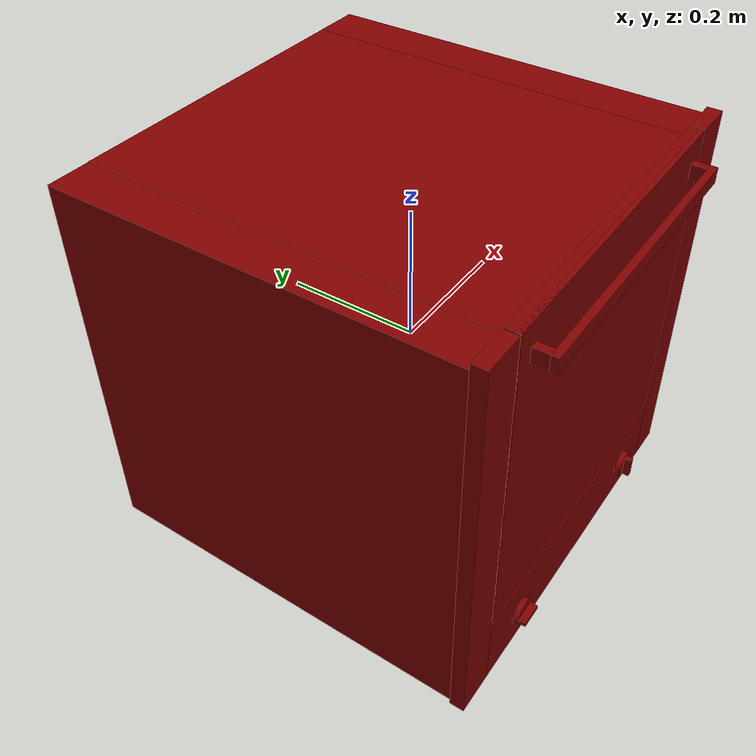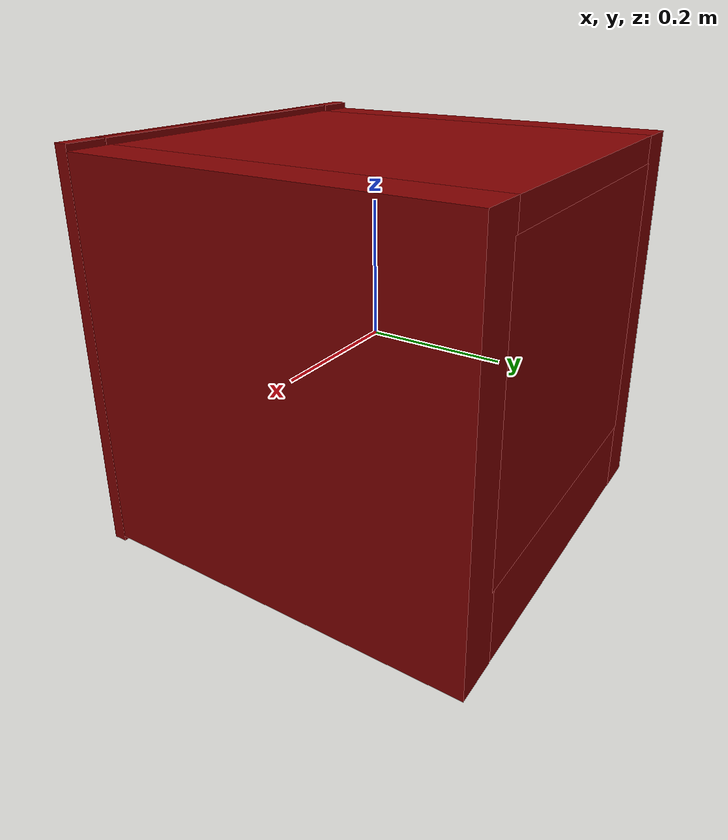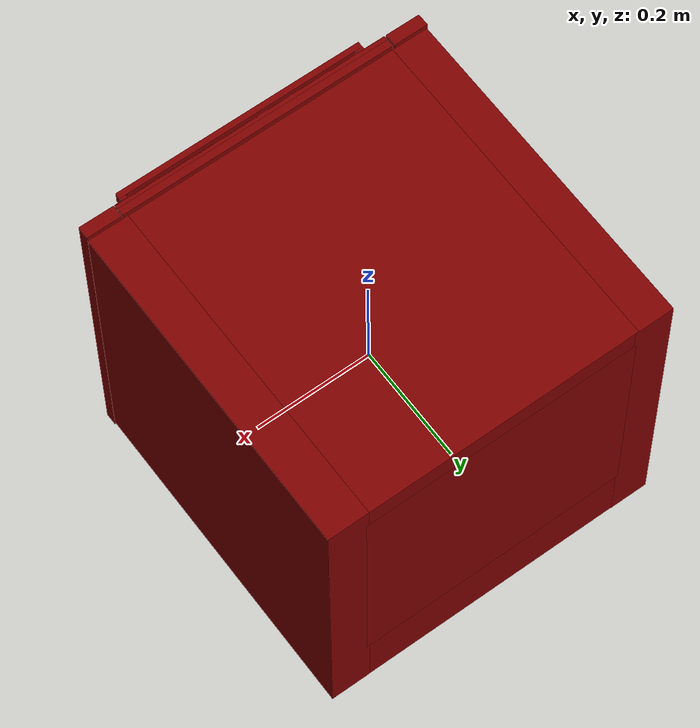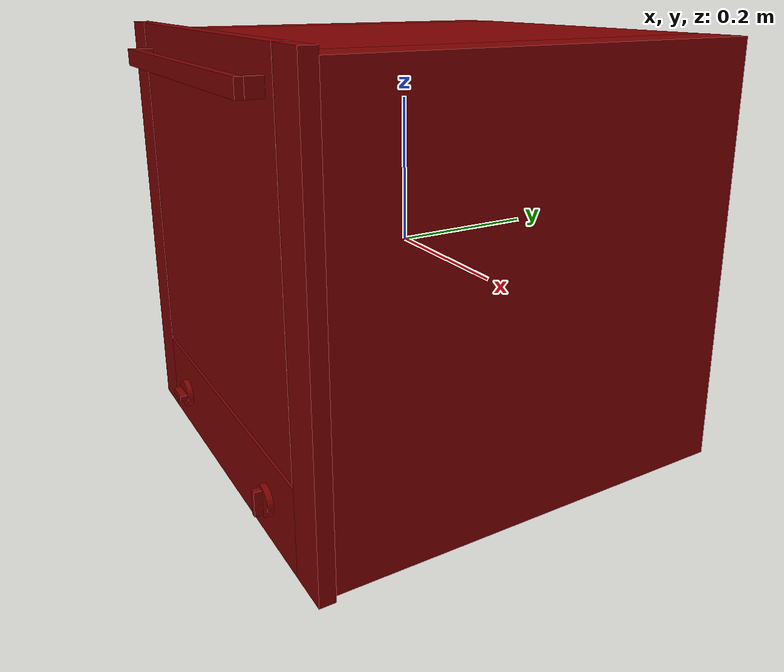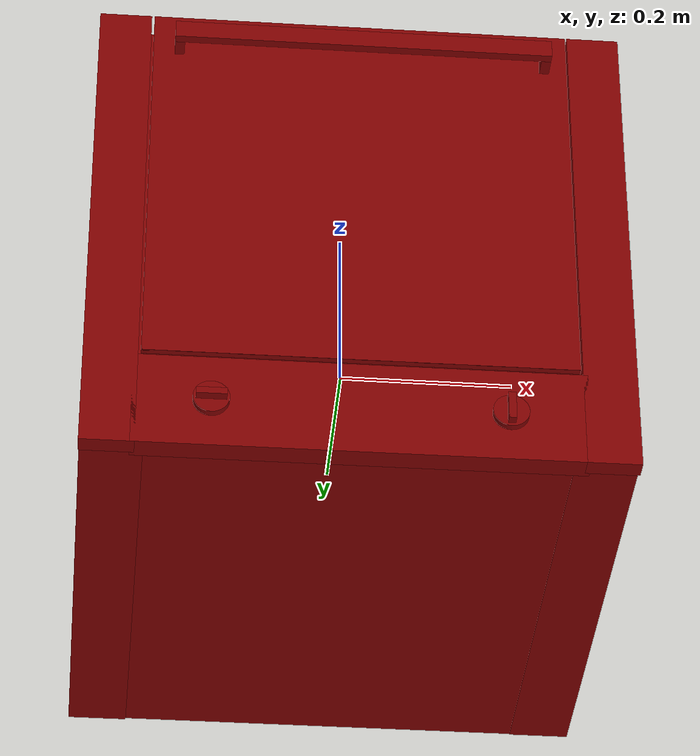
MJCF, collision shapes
<?xml version='1.0' encoding='UTF-8'?>
<mujoco model="model">
  <option timestep="0.002" gravity="0.0 0.0 -9.81"/>
  <compiler angle="radian"/>
  <asset>
    <mesh file="visuals/door.obj" name="door_vis"/>
    <mesh file="visuals/door_Clear.obj" name="door_Clear_vis"/>
    <mesh file="visuals/knob_temp.obj" name="knob_temp_vis"/>
    <mesh file="visuals/knob_time.obj" name="knob_time_vis"/>
    <mesh file="visuals/Body001.obj" name="Body001_vis"/>
    <mesh file="visuals/rack0.obj" name="rack0_vis"/>
    <mesh file="visuals/rack1.obj" name="rack1_vis"/>
    <texture file="visuals/T_BC001.png" name="Body001_material" type="2d"/>
    <material name="Body001_material" rgba="1 1 1 1.0" texture="Body001_material" shininess="0.4472135901451111" specular="0.5"/>
    <texture file="visuals/T_BC001.png" name="door_material" type="2d"/>
    <material name="door_material" rgba="1 1 1 1.0" texture="door_material" shininess="0.4472135901451111" specular="0.5"/>
    <material name="door_Clear_material" rgba="0.06299802660942078 0.06299802660942078 0.06299802660942078 0.800000011920929" shininess="0.4472135901451111" specular="0.3103448502657381"/>
    <texture file="visuals/T_BC001.png" name="knob_temp_material" type="2d"/>
    <material name="knob_temp_material" rgba="1 1 1 1.0" texture="knob_temp_material" shininess="0.4472135901451111" specular="0.3103448502657381"/>
    <texture file="visuals/T_BC001.png" name="knob_time_material" type="2d"/>
    <material name="knob_time_material" rgba="1 1 1 1.0" texture="knob_time_material" shininess="0.4472135901451111" specular="0.3103448502657381"/>
    <texture file="visuals/T_BC001.png" name="rack0_material" type="2d"/>
    <material name="rack0_material" rgba="1 1 1 1.0" texture="rack0_material" shininess="0.4472135901451111" specular="5"/>
    <texture file="visuals/T_BC001.png" name="rack1_material" type="2d"/>
    <material name="rack1_material" rgba="1 1 1 1.0" texture="rack1_material" shininess="0.4472135901451111" specular="5"/>
  </asset>
  <default>
    <default class="visual">
      <geom conaffinity="0" contype="0" group="1" type="mesh"/>
    </default>
    <default class="collision">
      <geom group="0" rgba="0.5 0 0 0.5"/>
    </default>
    <default class="spawn">
      <geom group="0" rgba="1 1 1 0.5" contype="0" conaffinity="0"/>
      <site group="0" rgba="1 1 1 0.5"/>
    </default>
    <default class="region">
      <geom group="1" conaffinity="0" contype="0" rgba="0 1 0 0"/>
    </default>
  </default>
  <worldbody>
    <body>
      <body name="object">
        <geom mesh="Body001_vis" type="mesh" solimp="0.998 0.998 0.001" solref="0.001 1" friction="0.95 0.3 0.1" class="visual" material="Body001_material"/>
        <geom class="collision" type="box" pos="-0.2630101442337036 0.02541886642575264 -0.001234508352354169" size="0.033552136272192 0.2859603762626648 0.2864573895931244" quat="1.0 0.0 0.0 0.0"/>
        <geom class="collision" type="box" pos="0.2626335620880127 0.02541886642575264 -0.00052410684293136" size="0.03434321656823158 0.2859603762626648 0.28642332553863525" quat="1.0 0.0 0.0 0.0"/>
        <geom class="collision" type="box" pos="-0.00023108544701244682 0.025858717039227486 0.2509821951389313" size="0.23473875224590302 0.2855015695095062 0.034805797040462494" quat="1.0 0.0 0.0 0.0"/>
        <geom class="collision" type="box" pos="-0.00023109244648367167 0.025935286656022072 -0.20306845009326935" size="0.23473893105983734 0.2854253053665161 0.08306281268596649" quat="1.0 0.0 0.0 0.0"/>
        <geom class="collision" type="box" pos="-0.0002310810232302174 0.26080644130706787 0.034602127969264984" size="0.23323078453540802 0.050572797656059265 0.2120906114578247" quat="1.0 0.0 0.0 0.0"/>
        <geom class="collision" type="box" pos="-0.2681024670600891 -0.2702047824859619 0.0" size="0.029395855963230133 0.010416253469884396 0.2950001060962677" quat="1.0 0.0 0.0 0.0"/>
        <geom class="collision" type="box" pos="0.2679767906665802 -0.2702047824859619 0.0" size="0.029521722346544266 0.010416260920464993 0.2950001060962677" quat="1.0 0.0 0.0 0.0"/>
        <geom class="collision" type="box" pos="-0.00023013663303572685 -0.2675216794013977 -0.23857353627681732" size="0.24376006424427032 0.013099294155836105 0.05642365664243698" quat="1.0 0.0 0.0 0.0"/>
        <geom class="collision" type="box" pos="-0.22725310921669006 -0.04732924699783325 0.05906589701771736" size="0.002708730986341834 0.15564122796058655 0.15343330800533295" quat="1.0 0.0 0.0 0.0"/>
        <geom class="collision" type="box" pos="-0.22124876081943512 -0.04732922464609146 -0.06022227555513382" size="0.004680379759520292 0.14901202917099 0.003728215117007494" quat="1.0 0.0 0.0 0.0"/>
        <geom class="collision" type="box" pos="-0.22124876081943512 -0.04732922464609146 -0.07607133686542511" size="0.0046803830191493034 0.1490122377872467 0.0037282216362655163" quat="1.0 0.0 0.0 0.0"/>
        <geom class="collision" type="box" pos="-0.22124876081943512 -0.04732922464609146 -0.022536739706993103" size="0.004680386278778315 0.14901243150234222 0.0037282246630638838" quat="1.0 0.0 0.0 0.0"/>
        <geom class="collision" type="box" pos="-0.22124876081943512 -0.04732922464609146 -0.04402101784944534" size="0.0046803890727460384 0.14901262521743774 0.003728227922692895" quat="1.0 0.0 0.0 0.0"/>
        <geom class="collision" type="box" pos="-0.22124876081943512 -0.04732922464609146 -0.006100676953792572" size="0.00468039233237505 0.14901281893253326 0.00372823397628963" quat="1.0 0.0 0.0 0.0"/>
        <geom class="collision" type="box" pos="-0.22124876081943512 -0.04732922464609146 0.012800794094800949" size="0.0046803951263427734 0.14901302754878998 0.0037282384000718594" quat="1.0 0.0 0.0 0.0"/>
        <geom class="collision" type="box" pos="-0.22124876081943512 -0.04732922464609146 0.02864985167980194" size="0.004680398385971785 0.1490132212638855 0.0037282449193298817" quat="1.0 0.0 0.0 0.0"/>
        <geom class="collision" type="box" pos="-0.22124876081943512 -0.04732922464609146 0.04661212116479874" size="0.004680401645600796 0.14901341497898102 0.0037282470148056746" quat="1.0 0.0 0.0 0.0"/>
        <geom class="collision" type="box" pos="-0.22124876081943512 -0.04732922464609146 0.06222638115286827" size="0.00468040443956852 0.14901362359523773 0.003728255396708846" quat="1.0 0.0 0.0 0.0"/>
        <geom class="collision" type="box" pos="-0.22124876081943512 -0.04732922464609146 0.08136264979839325" size="0.004680407699197531 0.14901381731033325 0.003728260053321719" quat="1.0 0.0 0.0 0.0"/>
        <geom class="collision" type="box" pos="-0.22124876081943512 -0.04732922464609146 0.09732910990715027" size="0.004680410493165255 0.14901401102542877 0.003728264942765236" quat="1.0 0.0 0.0 0.0"/>
        <geom class="collision" type="box" pos="-0.22124876081943512 -0.04732922464609146 0.1145869717001915" size="0.004680413752794266 0.1490142047405243 0.003728269599378109" quat="1.0 0.0 0.0 0.0"/>
        <geom class="collision" type="box" pos="-0.22124876081943512 -0.04732922464609146 0.13149262964725494" size="0.00468041654676199 0.149014413356781 0.0037282744888216257" quat="1.0 0.0 0.0 0.0"/>
        <geom class="collision" type="box" pos="-0.22124876081943512 -0.04732922464609146 0.14698947966098785" size="0.004680419806391001 0.14901460707187653 0.0037282793782651424" quat="1.0 0.0 0.0 0.0"/>
        <geom class="collision" type="box" pos="-0.22124876081943512 -0.04732922464609146 0.1634255349636078" size="0.004680423066020012 0.14901480078697205 0.0037282840348780155" quat="1.0 0.0 0.0 0.0"/>
        <geom class="collision" type="box" pos="-0.22124876081943512 -0.04732922464609146 0.18209220468997955" size="0.004680425859987736 0.14901500940322876 0.0037282889243215322" quat="1.0 0.0 0.0 0.0"/>
        <geom class="collision" type="box" pos="-0.22124876081943512 -0.04732922464609146 0.1981760710477829" size="0.004680429119616747 0.14901520311832428 0.003728293813765049" quat="1.0 0.0 0.0 0.0"/>
        <geom class="collision" type="box" pos="0.23021499812602997 -0.04732923209667206 0.05906589701771736" size="0.002708774758502841 0.15564493834972382 0.15343685448169708" quat="1.0 0.0 0.0 0.0"/>
        <geom class="collision" type="box" pos="0.22421063482761383 -0.04732923209667206 -0.06022227555513382" size="0.004680401645600796 0.14901559054851532 0.0037283014971762896" quat="1.0 0.0 0.0 0.0"/>
        <geom class="collision" type="box" pos="0.22421063482761383 -0.04732923209667206 -0.07607133686542511" size="0.00468040443956852 0.14901578426361084 0.003728308016434312" quat="1.0 0.0 0.0 0.0"/>
        <geom class="collision" type="box" pos="0.22421063482761383 -0.04732923209667206 -0.022536739706993103" size="0.004680407699197531 0.14901597797870636 0.003728311276063323" quat="1.0 0.0 0.0 0.0"/>
        <geom class="collision" type="box" pos="0.22421063482761383 -0.04732923209667206 -0.04402101784944534" size="0.004680410493165255 0.14901618659496307 0.0037283143028616905" quat="1.0 0.0 0.0 0.0"/>
        <geom class="collision" type="box" pos="0.22421063482761383 -0.04732923209667206 -0.006100676953792572" size="0.004680413752794266 0.1490163803100586 0.0037283203564584255" quat="1.0 0.0 0.0 0.0"/>
        <geom class="collision" type="box" pos="0.22421063482761383 -0.04732923209667206 0.012800794094800949" size="0.00468041654676199 0.1490165740251541 0.003728324780240655" quat="1.0 0.0 0.0 0.0"/>
        <geom class="collision" type="box" pos="0.22421063482761383 -0.04732923209667206 0.02864985167980194" size="0.004680419806391001 0.14901678264141083 0.0037283312994986773" quat="1.0 0.0 0.0 0.0"/>
        <geom class="collision" type="box" pos="0.22421063482761383 -0.04732923209667206 0.04661212116479874" size="0.004680423066020012 0.14901697635650635 0.00372833339497447" quat="1.0 0.0 0.0 0.0"/>
        <geom class="collision" type="box" pos="0.22421063482761383 -0.04732923209667206 0.06222638115286827" size="0.004680425859987736 0.14901717007160187 0.0037283417768776417" quat="1.0 0.0 0.0 0.0"/>
        <geom class="collision" type="box" pos="0.22421063482761383 -0.04732923209667206 0.08136264979839325" size="0.004680429119616747 0.1490173637866974 0.0037283464334905148" quat="1.0 0.0 0.0 0.0"/>
        <geom class="collision" type="box" pos="0.22421063482761383 -0.04732923209667206 0.09732910990715027" size="0.004680431913584471 0.1490175724029541 0.0037283513229340315" quat="1.0 0.0 0.0 0.0"/>
        <geom class="collision" type="box" pos="0.22421063482761383 -0.04732923209667206 0.1145869717001915" size="0.004680435173213482 0.14901776611804962 0.0037283562123775482" quat="1.0 0.0 0.0 0.0"/>
        <geom class="collision" type="box" pos="0.22421063482761383 -0.04732923209667206 0.13149262964725494" size="0.004680438432842493 0.14901795983314514 0.0037283608689904213" quat="1.0 0.0 0.0 0.0"/>
        <geom class="collision" type="box" pos="0.22421063482761383 -0.04732923209667206 0.14698947966098785" size="0.004680441226810217 0.14901816844940186 0.003728365758433938" quat="1.0 0.0 0.0 0.0"/>
        <geom class="collision" type="box" pos="0.22421063482761383 -0.04732923209667206 0.1634255349636078" size="0.004680445417761803 0.14901836216449738 0.0037283706478774548" quat="1.0 0.0 0.0 0.0"/>
        <geom class="collision" type="box" pos="0.22421063482761383 -0.04732923209667206 0.18209220468997955" size="0.004680451471358538 0.1490185558795929 0.003728375304490328" quat="1.0 0.0 0.0 0.0"/>
        <geom class="collision" type="box" pos="0.22421063482761383 -0.04732923209667206 0.1981760710477829" size="0.004680457524955273 0.14901874959468842 0.0037283801939338446" quat="1.0 0.0 0.0 0.0"/>
        <body name="door">
          <joint axis="1.0 0.0 0.0" pos="0.0004098769568372518 -0.2806213730946183 -0.175832848995924" limited="true" name="door_joint" range="0.0 1.15" type="hinge" damping="1" frictionloss="1" armature="1" stiffness="2"/>
          <geom mesh="door_vis" type="mesh" solimp="0.998 0.998 0.001" solref="0.001 1" friction="0.95 0.3 0.1" class="visual" material="door_material"/>
          <geom class="collision" type="box" pos="0.0004098769568372518 -0.2704674303531647 0.05958360806107521" size="0.23592068254947662 0.010153942741453648 0.2354164570569992" quat="1.0 0.0 0.0 0.0"/>
          <geom class="collision" type="box" pos="0.0022231449838727713 -0.27550461888313293 0.06000695377588272" size="0.2033178061246872 0.0023457747884094715 0.13238362967967987" quat="1.0 0.0 0.0 0.0"/>
          <geom class="collision" type="box" pos="-0.20611771941184998 -0.293444961309433 0.2514241933822632" size="0.005453939083963633 0.015249609015882015 0.011146306060254574" quat="1.0 0.0 0.0 0.0"/>
          <geom class="collision" type="box" pos="0.21035268902778625 -0.293444961309433 0.2514241933822632" size="0.005453942343592644 0.015249618329107761 0.011146319098770618" quat="1.0 0.0 0.0 0.0"/>
          <geom class="collision" type="box" pos="0.0021265612449496984 -0.30682143568992615 0.2514241933822632" size="0.21373148262500763 0.005022237543016672 0.011146883480250835" quat="1.0 0.0 0.0 0.0" name="door_handle_main"/>
          <geom class="collision" type="box" pos="0.0004098769568372518 -0.276955246925354 0.05958360806107521" size="0.23592068254947662 0.0036661261692643166 0.2354164570569992" quat="1.0 0.0 0.0 0.0" name="door_main"/>
          <body name="door_Clear">
            <geom mesh="door_Clear_vis" type="mesh" solimp="0.998 0.998 0.001" solref="0.001 1" friction="0.95 0.3 0.1" class="visual" material="door_Clear_material"/>
            <geom class="collision" type="box" pos="0.0022231449838727713 -0.27550461888313293 0.06000695377588272" size="0.2033178061246872 0.0023457747884094715 0.13238362967967987" quat="1.0 0.0 0.0 0.0"/>
          </body>
        </body>
        <body name="knob_temp">
          <joint axis="0.0 1.0 0.0" pos="-0.15987609326839447 -0.29023119807243347 -0.23870030045509338" limited="true" name="knob_temp_joint" range="0.0 3.141592653589793" type="hinge" damping="0.05" frictionloss="0.75" armature="1"/>
          <geom mesh="knob_temp_vis" type="mesh" solimp="0.998 0.998 0.001" solref="0.001 1" friction="0.95 0.3 0.1" class="visual" material="knob_temp_material"/>
          <geom class="collision" type="box" pos="-0.15983720123767853 -0.2947709262371063 -0.23863905668258667" size="0.016494592651724815 0.005381186027079821 0.003911553882062435" quat="1.0 0.0 0.0 0.0" name="knob_temp_main" friction="100 0.5 0.01"/>
          <geom class="collision" type="cylinder" pos="-0.1598464846611023 -0.2855515778064728 -0.23889756202697754" size="0.01970379240810871 0.004038320388644934" quat="0.7071068286895752 0.7071067690849304 -1.5700924318127872e-16 -5.9269340452702814e-24" friction="100 0.5 0.01"/>
        </body>
        <body name="knob_time">
          <joint axis="0.0 1.0 0.0" pos="0.15816548466682434 -0.29023119807243347 -0.23870030045509338" limited="true" name="knob_time_joint" range="0.0 3.961897402027128" type="hinge" damping="0.05" frictionloss="0.75" armature="1"/>
          <geom mesh="knob_time_vis" type="mesh" solimp="0.998 0.998 0.001" solref="0.001 1" friction="0.95 0.3 0.1" class="visual" material="knob_time_material"/>
          <geom class="collision" type="box" pos="0.15828751027584076 -0.2947709262371063 -0.2387455701828003" size="0.004095931071788073 0.00538118788972497 0.016494592651724815" quat="1.0 0.0 0.0 0.0" name="knob_time_main" friction="100 0.5 0.01"/>
          <geom class="collision" type="cylinder" pos="0.15842072665691376 -0.2855515778064728 -0.23889756202697754" size="0.01970379240810871 0.004038320388644934" quat="0.7071068286895752 0.7071067690849304 -1.5700924318127872e-16 -5.9269340452702814e-24" friction="100 0.5 0.01"/>
        </body>
        <body name="rack0">
          <geom class="region" name="reg_rack0" type="box" pos="0.0013898015022277832 -0.042783014476299286 0.016485968604683876" size="0.2092209438085556 0.13290167397260666 0.07838309167325497"/>
          <joint axis="0.0 -1.0 0.0" pos="0.001493387040682137 -0.04426621273159981 -0.06960800290107727" limited="true" name="rack0_joint" range="0.0 0.25" type="slide" damping="1" frictionloss="1" armature=".01" stiffness="0.05"/>
          <geom mesh="rack0_vis" type="mesh" solimp="0.998 0.998 0.001" solref="0.001 1" friction="0.95 0.3 0.1" class="visual" material="rack0_material"/>
          <geom class="collision" type="box" pos="1.1294131581962574e-05 -0.044238440692424774 -0.06946855783462524" size="0.22317492961883545 0.14247678220272064 0.0027160942554473877" quat="1.0 0.0 0.0 0.0"/>
        </body>
        <body name="rack1">
          <geom class="region" name="reg_rack1" type="box" pos="0.0013898015022277832 -0.042783014476299286 0.1608242765069008" size="0.2092209438085556 0.13290167397260666 0.05008301681280136"/>
          <joint axis="0.0 -1.0 0.0" pos="0.001493387040682137 -0.04426621273159981 0.10320843756198883" limited="true" name="rack1_joint" range="0.0 0.25" type="slide" damping="1" frictionloss="1" armature=".01" stiffness="0.05"/>
          <geom mesh="rack1_vis" type="mesh" solimp="0.998 0.998 0.001" solref="0.001 1" friction="0.95 0.3 0.1" class="visual" material="rack1_material"/>
          <geom class="collision" type="box" pos="1.1294131581962574e-05 -0.044238436967134476 0.10371974110603333" size="0.22317492961883545 0.14247678220272064 0.002408226253464818" quat="1.0 0.0 0.0 0.0"/>
        </body>
        <geom class="region" name="reg_int" type="box" pos="0.0015928596258163452 -0.0252377912402153 0.04854917153716087" size="0.2205897400379181 0.22796862369775772 0.16261348298192024"/>
        <geom class="region" name="reg_main" type="box" pos="7.450580596923828e-09 0.015379011631011963 0.0" size="0.2985001037120819 0.297000212430954 0.2960000762939453"/>
      </body>
    </body>
  </worldbody>
  <actuator>
    <motor name="door_joint_actuator" joint="door_joint" gear="50"/>
    <motor name="knob_temp_joint_actuator" joint="knob_temp_joint" gear="50"/>
    <motor name="knob_time_joint_actuator" joint="knob_time_joint" gear="50"/>
    <motor name="rack0_joint_actuator" joint="rack0_joint" gear="50"/>
    <motor name="rack1_joint_actuator" joint="rack1_joint" gear="50"/>
  </actuator>
</mujoco>
